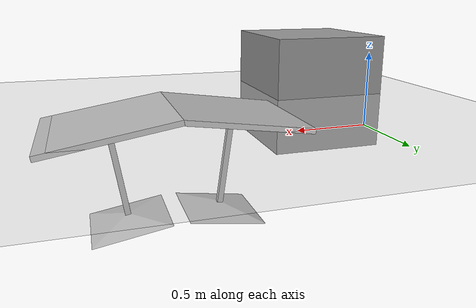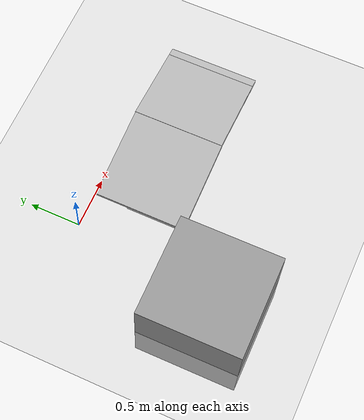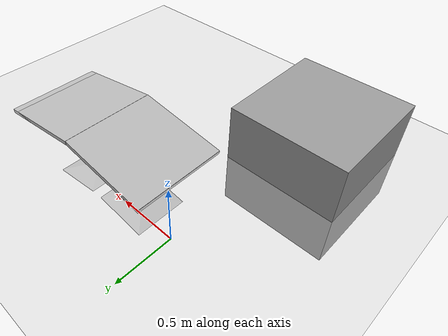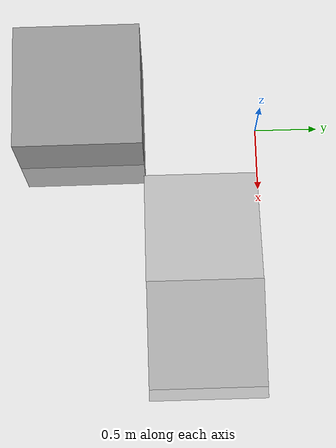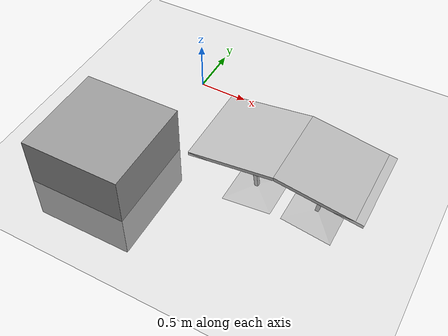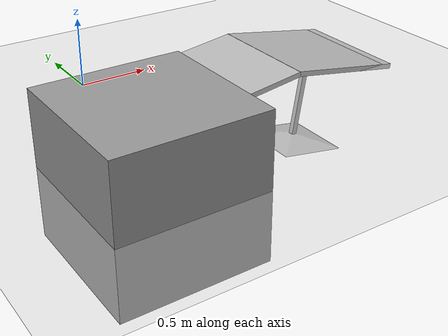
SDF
<sdf version="1.6">
 <world name="default">
  <light name="sun" type="directional">
   <pose>0 0 10 0 -0 0</pose>
   <diffuse>0.8 0.8 0.8 1</diffuse>
   <specular>0.2 0.2 0.2 1</specular>
   <attenuation>
    <range>1000</range>
    <constant>0.9</constant>
    <linear>0.01</linear>
    <quadratic>0.001</quadratic>
   </attenuation>
   <direction>-0.5 0.1 -0.9</direction>
  </light>
  <model name="ground_plane">
   <static>1</static>
   <link name="link">
    <collision name="collision">
     <geometry><plane><normal>0 0 1</normal><size>100 100</size></plane></geometry>
     <surface>
      <contact><collide_bitmask>65535</collide_bitmask></contact>
      <friction><ode><mu>100</mu><mu2>50</mu2></ode></friction>
     </surface>
    </collision>
    <visual name="visual">
     <cast_shadows>0</cast_shadows>
     <geometry><plane><normal>0 0 1</normal><size>100 100</size></plane></geometry>
     <material>
      <script><uri>file://media/materials/scripts/gazebo.material</uri><name>Gazebo/Grey</name></script>
     </material>
    </visual>
   </link>
  </model>
  <gravity>0 0 -9.8</gravity>
  <magnetic_field>6e-06 2.3e-05 -4.2e-05</magnetic_field>
  <atmosphere type="adiabatic"/>
  <physics name="default_physics" default="0" type="ode">
   <max_step_size>0.001</max_step_size>
   <real_time_factor>1</real_time_factor>
   <real_time_update_rate>1000</real_time_update_rate>
  </physics>
  <scene><ambient>0.4 0.4 0.4 1</ambient><background>0.7 0.7 0.7 1</background><shadows>1</shadows></scene>
  <spherical_coordinates>
   <surface_model>EARTH_WGS84</surface_model>
   <latitude_deg>0</latitude_deg>
   <longitude_deg>0</longitude_deg>
   <elevation>0</elevation>
   <heading_deg>0</heading_deg>
  </spherical_coordinates>
  <model name="cafe_table">
   <static>1</static>
   <link name="link">
    <collision name="surface">
     <pose>0 0 0.755 0 -0 0</pose>
     <geometry><box><size>0.913 0.913 0.04</size></box></geometry>
     <surface><friction><ode><mu>100</mu><mu2>50</mu2></ode></friction></surface>
    </collision>
    <collision name="column">
     <pose>0 0 0.37 0 -0 0</pose>
     <geometry><box><size>0.042 0.042 0.74</size></box></geometry>
    </collision>
    <collision name="base">
     <pose>0 0 0.02 0 -0 0</pose>
     <geometry><box><size>0.56 0.56 0.04</size></box></geometry>
    </collision>
    <visual name="visual">
     <geometry><mesh><uri>model://cafe_table/meshes/cafe_table.dae</uri></mesh></geometry>
    </visual>
   </link>
   <pose>0.919635 -0.460707 -0.701289 0 -0.140073 0</pose>
  </model>
  <model name="cafe_table_clone">
   <static>1</static>
   <link name="link">
    <collision name="surface">
     <pose>0 0 0.755 0 -0 0</pose>
     <geometry><box><size>0.913 0.913 0.04</size></box></geometry>
     <surface><friction><ode><mu>100</mu><mu2>50</mu2></ode></friction></surface>
    </collision>
    <collision name="column">
     <pose>0 0 0.37 0 -0 0</pose>
     <geometry><box><size>0.042 0.042 0.74</size></box></geometry>
    </collision>
    <collision name="base">
     <pose>0 0 0.02 0 -0 0</pose>
     <geometry><box><size>0.56 0.56 0.04</size></box></geometry>
    </collision>
    <visual name="visual">
     <geometry><mesh><uri>model://cafe_table/meshes/cafe_table.dae</uri></mesh></geometry>
    </visual>
   </link>
   <pose>1.58969 -0.458288 -0.707687 0 0.16322 0</pose>
  </model>
  <model name="unit_box">
   <static>1</static>
   <pose>-0.232706 -1.41565 0.011584 0 -0 0.00467</pose>
   <link name="link">
    <inertial>
     <mass>1</mass>
     <inertia>
      <ixx>0.166667</ixx>
      <ixy>0</ixy>
      <ixz>0</ixz>
      <iyy>0.166667</iyy>
      <iyz>0</iyz>
      <izz>0.166667</izz>
     </inertia>
    </inertial>
    <collision name="collision">
     <geometry><box><size>1 1 1</size></box></geometry>
     <surface><friction><ode><mu>100</mu><mu2>50</mu2></ode></friction></surface>
    </collision>
    <visual name="visual">
     <geometry><box><size>1 1 1</size></box></geometry>
     <material>
      <script><name>Gazebo/Grey</name><uri>file://media/materials/scripts/gazebo.material</uri></script>
     </material>
    </visual>
   </link>
  </model>
 </world>
</sdf>
